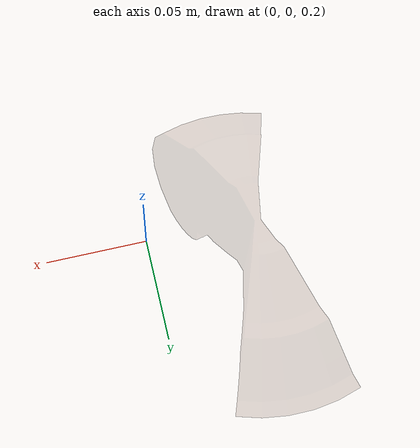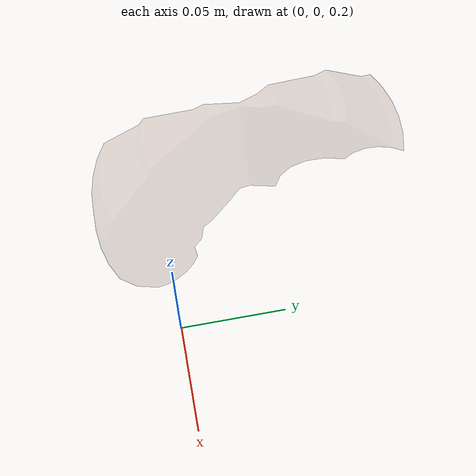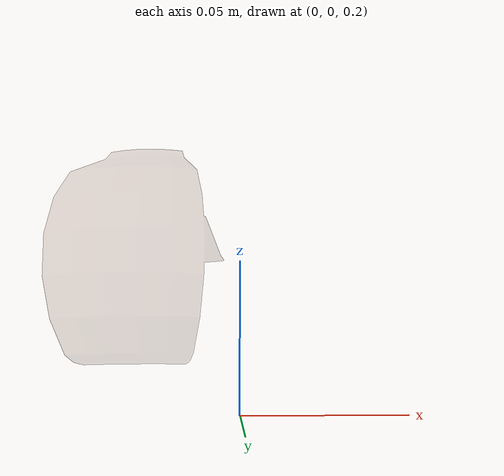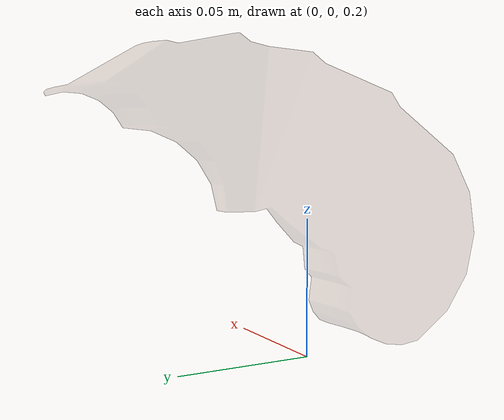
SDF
<?xml version="1.0" ?>
    <!--There is problem with the kuka mesh and everytime i use it gazebo crashes so I am gonna comment that part-->

<sdf version='1.6'>
  <model name="kuka_handlit">
    <link name = "world">
        <pose frame=''>0 0 0 0 0 0</pose>
        <inertial>
            <pose frame=''>0 0 0.0 0 0 0</pose>
            <mass>0.0</mass>
            <inertia>
                <ixx>0.</ixx>
                <ixy>0</ixy>
                <ixz>0</ixz>
                <iyy>0.</iyy>
                <iyz>0</iyz>
                <izz>0.</izz>
            </inertia>
        </inertial>
    </link>

    <!--Hand-->

            <link name =  "ws_FF">
                <pose frame=''>0 0 0 0.0 0.0 0.0</pose>
                <inertial>
                    <pose frame=''>0 0 0.09 0 0 0</pose>
                    <mass>1.8</mass>
                    <inertia>
                        <ixx>0.108</ixx>
                        <ixy>0</ixy>
                        <ixz>0</ixz>
                        <iyy>0.108</iyy>
                        <iyz>0</iyz>
                        <izz>0.054</izz>
                    </inertia>
                </inertial>

                <visual name='visual_ws_FF'>

                    <geometry>
                        <mesh>
                             <scale>1 1 1</scale>
                            <uri>/meshes/ws/FF/FF_ws.dae</uri>
                        </mesh>
                    </geometry>
                    <material>
                        <ambient>0.44140625 0.27734375 0.203125 0.2</ambient>
                        <diffuse>0.44140625 0.27734375 0.203125 0.2</diffuse>
                        <specular>0.44140625 0.27734375 0.203125 0.2</specular>
                        <emissive>0 0 0 0</emissive>
                    </material>
                </visual>
            </link>

            <joint name = "ws_FF"  type ="fixed">
               <child>ws_FF</child>
                <parent>world</parent>
                <axis>
                    <xyz></xyz>
                </axis>
            </joint>

  </model>

</sdf>
